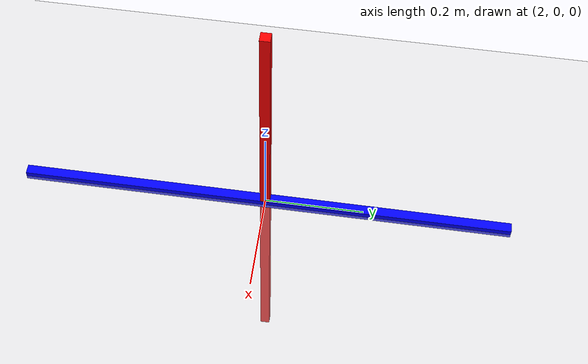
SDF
<?xml version="1.0" ?>
<sdf version="1.6">
  <world name="camera_c9_fov">
    <scene>
      <ambient>0.7 0.7 0.7 1</ambient>
      <background>0.5 0.5 0.5 1</background>
    </scene>
    <include><uri>model://sun</uri></include>
    <include><uri>model://ground_plane</uri></include>

    <!-- Горизонтальный FOV: красная вертикальная линия -->
    <model name="fov_cube_h">
      <pose>2.0 0.0 0.0 0 0 0</pose>
      <static>false</static>
      <link name="link">
        <gravity>false</gravity>
        <collision name="collision">
          <geometry><box><size>0.02 0.02 1.0</size></box></geometry>
        </collision>
        <visual name="visual">
          <geometry><box><size>0.02 0.02 1.0</size></box></geometry>
          <material>
            <ambient>1 0 0 1</ambient>
            <diffuse>1 0 0 1</diffuse>
          </material>
        </visual>
      </link>
    </model>

    <!-- Вертикальный FOV: синяя горизонтальная линия -->
    <model name="fov_cube_v">
      <pose>2.0 0.0 0.0 0 0 0</pose>
      <static>false</static>
      <link name="link">
        <gravity>false</gravity>
        <collision name="collision">
          <geometry><box><size>0.02 1.0 0.02</size></box></geometry>
        </collision>
        <visual name="visual">
          <geometry><box><size>0.02 1.0 0.02</size></box></geometry>
          <material>
            <ambient>0 0 1 1</ambient>
            <diffuse>0 0 1 1</diffuse>
          </material>
        </visual>
      </link>
    </model>
  </world>
</sdf>
